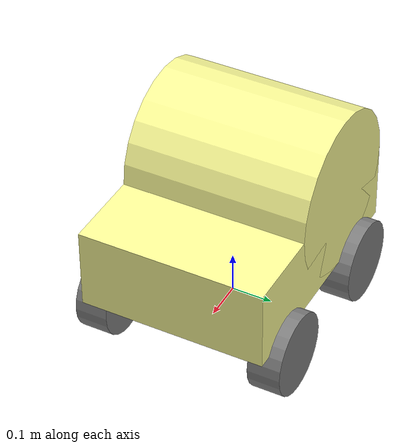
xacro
<?xml version="1.0"?>
<robot xmlns:xacro="http://www.ros.org/wiki/xacro" >
<xacro:include filename="inertial_macros.xacro" />

<material name="white">
        <color rgba="1 1 1 1" />
    </material>

    <material name="orange">
        <color rgba="1 0.3 0.1 1"/>
    </material>

    <material name="blue">
        <color rgba="0.2 0.2 1 1"/>
    </material>

    <material name="black">
        <color rgba="0 0 0 1"/>
    </material>

    <material name="red">
        <color rgba="1 0 0 1"/>
    </material>

    <material name="green">
        <color rgba="0 1 0 1" />
    </material>

    <material name="gray">
        <color rgba="0.5 0.5 0.5 1" />
    </material>

    <material name="pink">
        <color rgba="1 0.4 0.7 1" />
    </material>

    <material name="cyan" >
        <color rgba="0.0 1.0 1.0 1.0" />
    </material>

    <material name="yellow" >
        <color rgba="1 1 0.6 1" />
    </material>

    <!-- BASE LINK -->
    <link name="base_link">

    </link>

    <!-- chassis -->

    <joint name="chassis_joint" type="fixed">
        <parent link="base_link"/>
        <child link="chassis"/>
        <origin xyz="0 0 0.1"/>
    </joint>

    <link name="chassis">
        <visual>
            <origin xyz="0 0 0.1" rpy="0 0 0"/>
            <geometry>
                <box size="0.6 0.455 0.2"/>
            </geometry>
            <material name="yellow"/>
        </visual>
        <collision>
            <origin xyz="0 0 0.1" rpy="0 0 0"/>
            <geometry>
                <box size="0.6 0.455 0.2"/>
            </geometry>
        </collision>
            <!-- ... visual and collision here ... -->
        <xacro:inertial_box mass="10" x="0.6" y="0.455" z="0.2">
            <origin xyz="0 0 0.1" rpy="0 0 0"/>
        </xacro:inertial_box>
    </link>

    <gazebo reference="chassis">
        <material>Gazebo/Yellow</material>
    </gazebo>

    <!-- TOP CURVE -->
   <joint name="top_curve_joint" type="fixed">
        <parent link="chassis"/>
        <child link="top_curve"/>
        <origin xyz="-0.1 0 0.2" rpy="-${pi/2} 0 0"/>
        <axis xyz="0 0 1"/>
    </joint>

   <link name="top_curve">
        <visual>
            <geometry>
                <cylinder length="0.455" radius="0.2"/>
            </geometry>
            <material name="yellow"/>
        </visual>
        <collision>
            <origin xyz="-0.1 0 0.2" rpy="-${pi/2} 0 0"/>
            <geometry>
                <cylinder length="0.455" radius="0.2"/>
            </geometry>
        </collision>
            <!-- ... visual and collision here ... -->
        <xacro:inertial_cylinder mass="0.5" length="0.455" radius="0.2">
            <origin xyz="0 0 0.2" rpy="0 0 0"/>
        </xacro:inertial_cylinder>
    </link>

    <gazebo reference="top_curve">
        <material>Gazebo/Yellow</material>
    </gazebo>

    <!-- LEFT FRONT WHEEL -->
    <joint name="left_front_wheel_joint" type="continuous">
        <parent link="base_link"/>
        <child link="left_front_wheel"/>
        <origin xyz="0.18 -0.22 0.05" rpy="-${pi/2} 0 0"/>
        <axis xyz="0 0 1"/>
    </joint>

    <link name="left_front_wheel">
        <visual>
            <geometry>
                <cylinder length="0.08" radius="0.1" />
            </geometry>
            <material name="gray"/>
        </visual>
        <collision>
            <origin xyz="0.18 -0.22 0.05" rpy="-${pi/2} 0 0"/>
            <geometry>
                <cylinder length="0.08" radius="0.1" />
            </geometry>
        </collision>
        <!-- ... visual and collision here ... -->
        <xacro:inertial_cylinder mass="0.1" length="0.08" radius="0.1">
            <origin xyz="0 0 0.05" rpy="0 0 0"/>
        </xacro:inertial_cylinder>
    </link>

    <gazebo reference="left_front_wheel">
        <material>Gazebo/Gray</material>
    </gazebo>

    <!-- LEFT BACK WHEEL -->
    <joint name="left_back_wheel_joint" type="continuous">
        <parent link="base_link"/>
        <child link="left_back_wheel"/>
        <origin xyz="-0.18 -0.22 0.05" rpy="-${pi/2} 0 0"/>
        <axis xyz="0 0 1"/>
    </joint>

    <link name="left_back_wheel">
        <visual>
            <geometry>
                <cylinder length="0.08" radius="0.1" />
            </geometry>
            <material name="gray"/>
        </visual>
            <!-- ... visual and collision here ... -->
        <collision>
            <origin xyz="-0.18 -0.22 0.05" rpy="-${pi/2} 0 0"/>
            <geometry>
                <cylinder length="0.08" radius="0.1" />
            </geometry>
        </collision>
        <xacro:inertial_cylinder mass="0.1" length="0.08" radius="0.1">
            <origin xyz="0 0 0.05" rpy="0 0 0"/>
        </xacro:inertial_cylinder>
    </link>

    <gazebo reference="left_back_wheel">
        <material>Gazebo/Gray</material>
    </gazebo>

    <!-- RIGHT FRONT WHEEL -->
    <joint name="right_front_wheel_joint" type="continuous">
        <parent link="base_link"/>
        <child link="right_front_wheel"/>
        <origin xyz="0.18 0.22 0.05" rpy="${pi/2} 0 0"/>
        <axis xyz="0 0 1"/>
    </joint>

    <link name="right_front_wheel">
        <visual>
            <geometry>
                <cylinder length="0.08" radius="0.1" />
            </geometry>
            <material name="gray"/>
        </visual>
            <!-- ... visual and collision here ... -->
         <collision>
            <origin xyz="0.18 0.22 0.05" rpy="-${pi/2} 0 0"/>
            <geometry>
                <cylinder length="0.08" radius="0.1" />
            </geometry>
        </collision>
        <xacro:inertial_cylinder mass="0.1" length="0.08" radius="0.1">
            <origin xyz="0 0 0.05" rpy="0 0 0"/>
        </xacro:inertial_cylinder>
    </link>

    <gazebo reference="right_front_wheel">
        <material>Gazebo/Gray</material>
    </gazebo>

    <!-- RIGHT BACK WHEEL -->
    <joint name="right_back_wheel_joint" type="continuous">
        <parent link="base_link"/>
        <child link="right_back_wheel"/>
        <origin xyz="-0.18 0.22 0.05" rpy="${pi/2} 0 0"/>
        <axis xyz="0 0 1"/>
    </joint>

    <link name="right_back_wheel">
        <visual>
            <geometry>
                <cylinder length="0.08" radius="0.1" />
            </geometry>
            <material name="gray"/>
        </visual>
            <!-- ... visual and collision here ... -->
        <collision>
            <origin xyz="-0.18 0.22 0.05" rpy="-${pi/2} 0 0"/>
            <geometry>
                <cylinder length="0.08" radius="0.1" />
            </geometry>
        </collision>
        <xacro:inertial_cylinder mass="0.1" length="0.08" radius="0.1">
            <origin xyz="0 0 0.05" rpy="0 0 0"/>
        </xacro:inertial_cylinder>
    </link>

    <gazebo reference="right_back_wheel">
        <material>Gazebo/Gray</material>
    </gazebo>

</robot>

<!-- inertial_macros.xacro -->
<robot xmlns:xacro="http://www.ros.org/wiki/xacro" >

        <!-- Specify some standard inertial calculations https://en.wikipedia.org/wiki/List_of_moments_of_inertia -->
        <!-- These make use of xacro's mathematical functionality -->
    <xacro:macro name="inertial_sphere" params="mass radius *origin">
        <inertial>
            <xacro:insert_block name="origin"/>
            <mass value="${mass}" />
            <inertia ixx="${(2/5) * mass * (radius*radius)}" ixy="0.0" ixz="0.0"
                    iyy="${(2/5) * mass * (radius*radius)}" iyz="0.0"
                    izz="${(2/5) * mass * (radius*radius)}" />
        </inertial>
    </xacro:macro>

    <xacro:macro name="inertial_box" params="mass x y z *origin">
        <inertial>
            <xacro:insert_block name="origin"/>
            <mass value="${mass}" />
            <inertia ixx="${(1/12) * mass * (y*y+z*z)}" ixy="0.0" ixz="0.0"
                    iyy="${(1/12) * mass * (x*x+z*z)}" iyz="0.0"
                    izz="${(1/12) * mass * (x*x+y*y)}" />
        </inertial>
    </xacro:macro>

    <xacro:macro name="inertial_cylinder" params="mass length radius *origin">
        <inertial>
            <xacro:insert_block name="origin"/>
            <mass value="${mass}" />
            <inertia ixx="${(1/12) * mass * (3*radius*radius + length*length)}" ixy="0.0" ixz="0.0"
                    iyy="${(1/12) * mass * (3*radius*radius + length*length)}" iyz="0.0"
                    izz="${(1/2) * mass * (radius*radius)}" />
        </inertial>
    </xacro:macro>
</robot>
